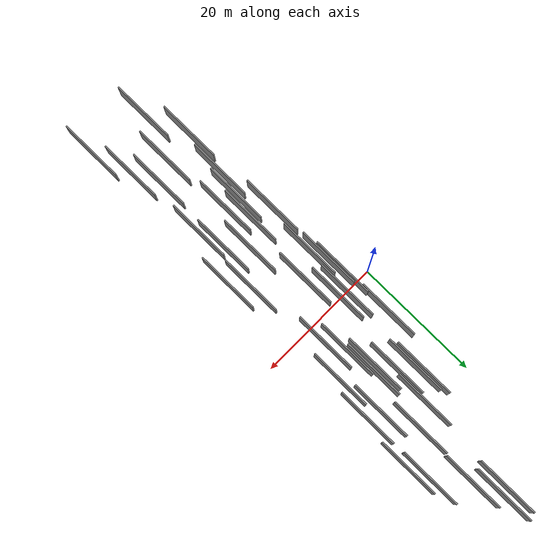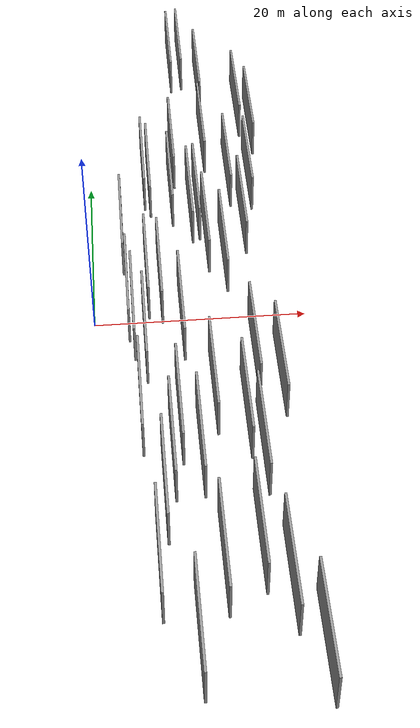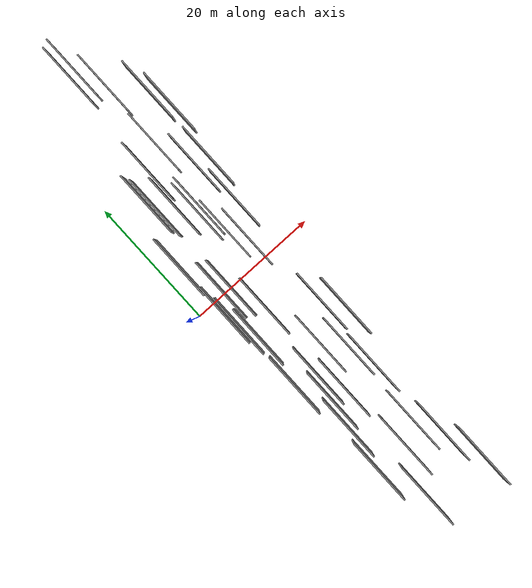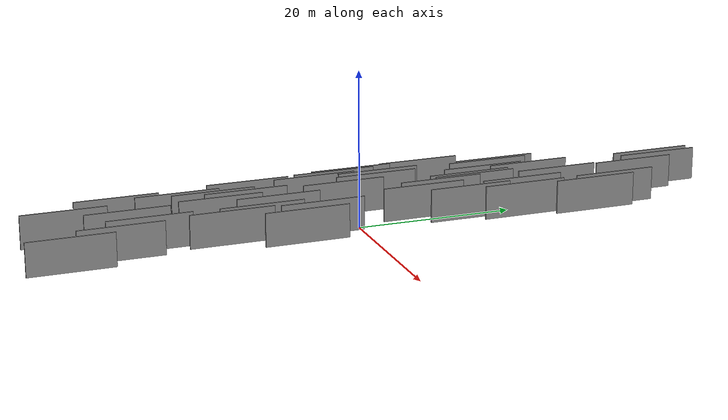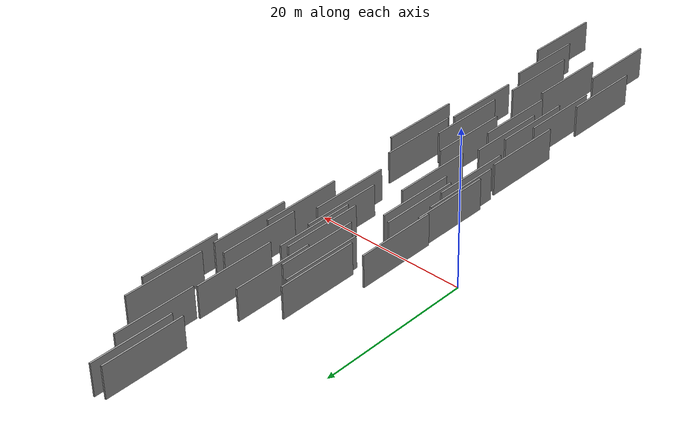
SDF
<sdf version="1.6">
 <world name="default">
  <scene>
   <sky><clouds><speed>12</speed></clouds></sky>
   <ambient>0.4 0.4 0.4 1</ambient>
   <background>0.7 0.7 0.7 1</background>
   <shadows>1</shadows>
  </scene>
  <gravity>0 0 -9.8066</gravity>
  <magnetic_field>6e-06 2.3e-05 -4.2e-05</magnetic_field>
  <physics default="0" name="default_physics" type="ode">
   <ode>
    <solver>
     <type>quick</type>
     <iters>10</iters>
     <sor>1.0</sor>
     <use_dynamic_moi_rescaling>0</use_dynamic_moi_rescaling>
    </solver>
    <constraints>
     <cfm>0</cfm>
     <erp>0.2</erp>
     <contact_max_correcting_vel>100</contact_max_correcting_vel>
     <contact_surface_layer>0.001</contact_surface_layer>
    </constraints>
   </ode>
   <max_step_size>0.004</max_step_size>
   <real_time_factor>1</real_time_factor>
   <real_time_update_rate>250</real_time_update_rate>
  </physics>
  <light name="sun" type="directional">
   <pose>0 0 10 0 0 0</pose>
   <diffuse>0.8 0.8 0.8 1</diffuse>
   <specular>0.2 0.2 0.2 1</specular>
   <attenuation>
    <range>1000</range>
    <constant>0.9</constant>
    <linear>0.01</linear>
    <quadratic>0.001</quadratic>
   </attenuation>
   <direction>-0.5 0.1 -0.9</direction>
  </light>
  <model name="grey_wall_1">
   <static>1</static>
   <pose>16.8194 23.5999 5.0 0.000000 0.000000 1.570796</pose>
   <link name="link">
    <pose>0 0 2.00 0 0 0</pose>
    <collision name="collision"><geometry><box><size>10.00 0.2 4.00</size></box></geometry></collision>
    <visual name="visual">
     <cast_shadows>0</cast_shadows>
     <geometry><box><size>10.00 0.2 4.00</size></box></geometry>
     <material>
      <script>
       <uri>model://grey_wall/materials/scripts</uri>
       <uri>model://grey_wall/materials/textures</uri>
       <name>vrc/grey_wall</name>
      </script>
     </material>
    </visual>
   </link>
  </model>
  <model name="grey_wall_2">
   <static>1</static>
   <pose>16.0667 -12.1302 5.0 0.000000 0.000000 1.570796</pose>
   <link name="link">
    <pose>0 0 2.00 0 0 0</pose>
    <collision name="collision"><geometry><box><size>10.00 0.2 4.00</size></box></geometry></collision>
    <visual name="visual">
     <cast_shadows>0</cast_shadows>
     <geometry><box><size>10.00 0.2 4.00</size></box></geometry>
     <material>
      <script>
       <uri>model://grey_wall/materials/scripts</uri>
       <uri>model://grey_wall/materials/textures</uri>
       <name>vrc/grey_wall</name>
      </script>
     </material>
    </visual>
   </link>
  </model>
  <model name="grey_wall_3">
   <static>1</static>
   <pose>5.9279 14.4292 5.0 0.000000 0.000000 1.570796</pose>
   <link name="link">
    <pose>0 0 2.00 0 0 0</pose>
    <collision name="collision"><geometry><box><size>10.00 0.2 4.00</size></box></geometry></collision>
    <visual name="visual">
     <cast_shadows>0</cast_shadows>
     <geometry><box><size>10.00 0.2 4.00</size></box></geometry>
     <material>
      <script>
       <uri>model://grey_wall/materials/scripts</uri>
       <uri>model://grey_wall/materials/textures</uri>
       <name>vrc/grey_wall</name>
      </script>
     </material>
    </visual>
   </link>
  </model>
  <model name="grey_wall_4">
   <static>1</static>
   <pose>7.9759 -4.9301 5.0 0.000000 0.000000 1.570796</pose>
   <link name="link">
    <pose>0 0 2.00 0 0 0</pose>
    <collision name="collision"><geometry><box><size>10.00 0.2 4.00</size></box></geometry></collision>
    <visual name="visual">
     <cast_shadows>0</cast_shadows>
     <geometry><box><size>10.00 0.2 4.00</size></box></geometry>
     <material>
      <script>
       <uri>model://grey_wall/materials/scripts</uri>
       <uri>model://grey_wall/materials/textures</uri>
       <name>vrc/grey_wall</name>
      </script>
     </material>
    </visual>
   </link>
  </model>
  <model name="grey_wall_5">
   <static>1</static>
   <pose>15.7229 26.6872 5.0 0.000000 0.000000 1.570796</pose>
   <link name="link">
    <pose>0 0 2.00 0 0 0</pose>
    <collision name="collision"><geometry><box><size>10.00 0.2 4.00</size></box></geometry></collision>
    <visual name="visual">
     <cast_shadows>0</cast_shadows>
     <geometry><box><size>10.00 0.2 4.00</size></box></geometry>
     <material>
      <script>
       <uri>model://grey_wall/materials/scripts</uri>
       <uri>model://grey_wall/materials/textures</uri>
       <name>vrc/grey_wall</name>
      </script>
     </material>
    </visual>
   </link>
  </model>
  <model name="grey_wall_6">
   <static>1</static>
   <pose>8.4794 18.7183 5.0 0.000000 0.000000 1.570796</pose>
   <link name="link">
    <pose>0 0 2.00 0 0 0</pose>
    <collision name="collision"><geometry><box><size>10.00 0.2 4.00</size></box></geometry></collision>
    <visual name="visual">
     <cast_shadows>0</cast_shadows>
     <geometry><box><size>10.00 0.2 4.00</size></box></geometry>
     <material>
      <script>
       <uri>model://grey_wall/materials/scripts</uri>
       <uri>model://grey_wall/materials/textures</uri>
       <name>vrc/grey_wall</name>
      </script>
     </material>
    </visual>
   </link>
  </model>
  <model name="grey_wall_7">
   <static>1</static>
   <pose>7.0692 -16.6291 5.0 0.000000 0.000000 1.570796</pose>
   <link name="link">
    <pose>0 0 2.00 0 0 0</pose>
    <collision name="collision"><geometry><box><size>10.00 0.2 4.00</size></box></geometry></collision>
    <visual name="visual">
     <cast_shadows>0</cast_shadows>
     <geometry><box><size>10.00 0.2 4.00</size></box></geometry>
     <material>
      <script>
       <uri>model://grey_wall/materials/scripts</uri>
       <uri>model://grey_wall/materials/textures</uri>
       <name>vrc/grey_wall</name>
      </script>
     </material>
    </visual>
   </link>
  </model>
  <model name="grey_wall_8">
   <static>1</static>
   <pose>7.1551 -38.0126 5.0 0.000000 0.000000 1.570796</pose>
   <link name="link">
    <pose>0 0 2.00 0 0 0</pose>
    <collision name="collision"><geometry><box><size>10.00 0.2 4.00</size></box></geometry></collision>
    <visual name="visual">
     <cast_shadows>0</cast_shadows>
     <geometry><box><size>10.00 0.2 4.00</size></box></geometry>
     <material>
      <script>
       <uri>model://grey_wall/materials/scripts</uri>
       <uri>model://grey_wall/materials/textures</uri>
       <name>vrc/grey_wall</name>
      </script>
     </material>
    </visual>
   </link>
  </model>
  <model name="grey_wall_9">
   <static>1</static>
   <pose>15.8498 14.8824 5.0 0.000000 0.000000 1.570796</pose>
   <link name="link">
    <pose>0 0 2.00 0 0 0</pose>
    <collision name="collision"><geometry><box><size>10.00 0.2 4.00</size></box></geometry></collision>
    <visual name="visual">
     <cast_shadows>0</cast_shadows>
     <geometry><box><size>10.00 0.2 4.00</size></box></geometry>
     <material>
      <script>
       <uri>model://grey_wall/materials/scripts</uri>
       <uri>model://grey_wall/materials/textures</uri>
       <name>vrc/grey_wall</name>
      </script>
     </material>
    </visual>
   </link>
  </model>
  <model name="grey_wall_10">
   <static>1</static>
   <pose>6.2799 -0.2118 5.0 0.000000 0.000000 1.570796</pose>
   <link name="link">
    <pose>0 0 2.00 0 0 0</pose>
    <collision name="collision"><geometry><box><size>10.00 0.2 4.00</size></box></geometry></collision>
    <visual name="visual">
     <cast_shadows>0</cast_shadows>
     <geometry><box><size>10.00 0.2 4.00</size></box></geometry>
     <material>
      <script>
       <uri>model://grey_wall/materials/scripts</uri>
       <uri>model://grey_wall/materials/textures</uri>
       <name>vrc/grey_wall</name>
      </script>
     </material>
    </visual>
   </link>
  </model>
  <model name="grey_wall_11">
   <static>1</static>
   <pose>14.0681 -9.5814 5.0 0.000000 0.000000 1.570796</pose>
   <link name="link">
    <pose>0 0 2.00 0 0 0</pose>
    <collision name="collision"><geometry><box><size>10.00 0.2 4.00</size></box></geometry></collision>
    <visual name="visual">
     <cast_shadows>0</cast_shadows>
     <geometry><box><size>10.00 0.2 4.00</size></box></geometry>
     <material>
      <script>
       <uri>model://grey_wall/materials/scripts</uri>
       <uri>model://grey_wall/materials/textures</uri>
       <name>vrc/grey_wall</name>
      </script>
     </material>
    </visual>
   </link>
  </model>
  <model name="grey_wall_12">
   <static>1</static>
   <pose>13.8197 15.4626 5.0 0.000000 0.000000 1.570796</pose>
   <link name="link">
    <pose>0 0 2.00 0 0 0</pose>
    <collision name="collision"><geometry><box><size>10.00 0.2 4.00</size></box></geometry></collision>
    <visual name="visual">
     <cast_shadows>0</cast_shadows>
     <geometry><box><size>10.00 0.2 4.00</size></box></geometry>
     <material>
      <script>
       <uri>model://grey_wall/materials/scripts</uri>
       <uri>model://grey_wall/materials/textures</uri>
       <name>vrc/grey_wall</name>
      </script>
     </material>
    </visual>
   </link>
  </model>
  <model name="grey_wall_13">
   <static>1</static>
   <pose>11.6754 20.9842 5.0 0.000000 0.000000 1.570796</pose>
   <link name="link">
    <pose>0 0 2.00 0 0 0</pose>
    <collision name="collision"><geometry><box><size>10.00 0.2 4.00</size></box></geometry></collision>
    <visual name="visual">
     <cast_shadows>0</cast_shadows>
     <geometry><box><size>10.00 0.2 4.00</size></box></geometry>
     <material>
      <script>
       <uri>model://grey_wall/materials/scripts</uri>
       <uri>model://grey_wall/materials/textures</uri>
       <name>vrc/grey_wall</name>
      </script>
     </material>
    </visual>
   </link>
  </model>
  <model name="grey_wall_14">
   <static>1</static>
   <pose>10.1607 -13.6476 5.0 0.000000 0.000000 1.570796</pose>
   <link name="link">
    <pose>0 0 2.00 0 0 0</pose>
    <collision name="collision"><geometry><box><size>10.00 0.2 4.00</size></box></geometry></collision>
    <visual name="visual">
     <cast_shadows>0</cast_shadows>
     <geometry><box><size>10.00 0.2 4.00</size></box></geometry>
     <material>
      <script>
       <uri>model://grey_wall/materials/scripts</uri>
       <uri>model://grey_wall/materials/textures</uri>
       <name>vrc/grey_wall</name>
      </script>
     </material>
    </visual>
   </link>
  </model>
  <model name="grey_wall_15">
   <static>1</static>
   <pose>3.0188 6.4515 5.0 0.000000 0.000000 1.570796</pose>
   <link name="link">
    <pose>0 0 2.00 0 0 0</pose>
    <collision name="collision"><geometry><box><size>10.00 0.2 4.00</size></box></geometry></collision>
    <visual name="visual">
     <cast_shadows>0</cast_shadows>
     <geometry><box><size>10.00 0.2 4.00</size></box></geometry>
     <material>
      <script>
       <uri>model://grey_wall/materials/scripts</uri>
       <uri>model://grey_wall/materials/textures</uri>
       <name>vrc/grey_wall</name>
      </script>
     </material>
    </visual>
   </link>
  </model>
  <model name="grey_wall_16">
   <static>1</static>
   <pose>5.4057 -24.4074 5.0 0.000000 0.000000 1.570796</pose>
   <link name="link">
    <pose>0 0 2.00 0 0 0</pose>
    <collision name="collision"><geometry><box><size>10.00 0.2 4.00</size></box></geometry></collision>
    <visual name="visual">
     <cast_shadows>0</cast_shadows>
     <geometry><box><size>10.00 0.2 4.00</size></box></geometry>
     <material>
      <script>
       <uri>model://grey_wall/materials/scripts</uri>
       <uri>model://grey_wall/materials/textures</uri>
       <name>vrc/grey_wall</name>
      </script>
     </material>
    </visual>
   </link>
  </model>
  <model name="grey_wall_17">
   <static>1</static>
   <pose>5.1045 0.4336 5.0 0.000000 0.000000 1.570796</pose>
   <link name="link">
    <pose>0 0 2.00 0 0 0</pose>
    <collision name="collision"><geometry><box><size>10.00 0.2 4.00</size></box></geometry></collision>
    <visual name="visual">
     <cast_shadows>0</cast_shadows>
     <geometry><box><size>10.00 0.2 4.00</size></box></geometry>
     <material>
      <script>
       <uri>model://grey_wall/materials/scripts</uri>
       <uri>model://grey_wall/materials/textures</uri>
       <name>vrc/grey_wall</name>
      </script>
     </material>
    </visual>
   </link>
  </model>
  <model name="grey_wall_18">
   <static>1</static>
   <pose>3.2434 -2.3034 5.0 0.000000 0.000000 1.570796</pose>
   <link name="link">
    <pose>0 0 2.00 0 0 0</pose>
    <collision name="collision"><geometry><box><size>10.00 0.2 4.00</size></box></geometry></collision>
    <visual name="visual">
     <cast_shadows>0</cast_shadows>
     <geometry><box><size>10.00 0.2 4.00</size></box></geometry>
     <material>
      <script>
       <uri>model://grey_wall/materials/scripts</uri>
       <uri>model://grey_wall/materials/textures</uri>
       <name>vrc/grey_wall</name>
      </script>
     </material>
    </visual>
   </link>
  </model>
  <model name="grey_wall_19">
   <static>1</static>
   <pose>3.6451 -4.6188 5.0 0.000000 0.000000 1.570796</pose>
   <link name="link">
    <pose>0 0 2.00 0 0 0</pose>
    <collision name="collision"><geometry><box><size>10.00 0.2 4.00</size></box></geometry></collision>
    <visual name="visual">
     <cast_shadows>0</cast_shadows>
     <geometry><box><size>10.00 0.2 4.00</size></box></geometry>
     <material>
      <script>
       <uri>model://grey_wall/materials/scripts</uri>
       <uri>model://grey_wall/materials/textures</uri>
       <name>vrc/grey_wall</name>
      </script>
     </material>
    </visual>
   </link>
  </model>
  <model name="grey_wall_20">
   <static>1</static>
   <pose>14.4565 -33.1726 5.0 0.000000 0.000000 1.570796</pose>
   <link name="link">
    <pose>0 0 2.00 0 0 0</pose>
    <collision name="collision"><geometry><box><size>10.00 0.2 4.00</size></box></geometry></collision>
    <visual name="visual">
     <cast_shadows>0</cast_shadows>
     <geometry><box><size>10.00 0.2 4.00</size></box></geometry>
     <material>
      <script>
       <uri>model://grey_wall/materials/scripts</uri>
       <uri>model://grey_wall/materials/textures</uri>
       <name>vrc/grey_wall</name>
      </script>
     </material>
    </visual>
   </link>
  </model>
  <model name="grey_wall_21">
   <static>1</static>
   <pose>6.2597 -20.3163 5.0 0.000000 0.000000 1.570796</pose>
   <link name="link">
    <pose>0 0 2.00 0 0 0</pose>
    <collision name="collision"><geometry><box><size>10.00 0.2 4.00</size></box></geometry></collision>
    <visual name="visual">
     <cast_shadows>0</cast_shadows>
     <geometry><box><size>10.00 0.2 4.00</size></box></geometry>
     <material>
      <script>
       <uri>model://grey_wall/materials/scripts</uri>
       <uri>model://grey_wall/materials/textures</uri>
       <name>vrc/grey_wall</name>
      </script>
     </material>
    </visual>
   </link>
  </model>
  <model name="grey_wall_22">
   <static>1</static>
   <pose>4.5994 -7.4228 5.0 0.000000 0.000000 1.570796</pose>
   <link name="link">
    <pose>0 0 2.00 0 0 0</pose>
    <collision name="collision"><geometry><box><size>10.00 0.2 4.00</size></box></geometry></collision>
    <visual name="visual">
     <cast_shadows>0</cast_shadows>
     <geometry><box><size>10.00 0.2 4.00</size></box></geometry>
     <material>
      <script>
       <uri>model://grey_wall/materials/scripts</uri>
       <uri>model://grey_wall/materials/textures</uri>
       <name>vrc/grey_wall</name>
      </script>
     </material>
    </visual>
   </link>
  </model>
  <model name="grey_wall_23">
   <static>1</static>
   <pose>12.4630 3.4419 5.0 0.000000 0.000000 1.570796</pose>
   <link name="link">
    <pose>0 0 2.00 0 0 0</pose>
    <collision name="collision"><geometry><box><size>10.00 0.2 4.00</size></box></geometry></collision>
    <visual name="visual">
     <cast_shadows>0</cast_shadows>
     <geometry><box><size>10.00 0.2 4.00</size></box></geometry>
     <material>
      <script>
       <uri>model://grey_wall/materials/scripts</uri>
       <uri>model://grey_wall/materials/textures</uri>
       <name>vrc/grey_wall</name>
      </script>
     </material>
    </visual>
   </link>
  </model>
  <model name="grey_wall_24">
   <static>1</static>
   <pose>7.9998 12.9274 5.0 0.000000 0.000000 1.570796</pose>
   <link name="link">
    <pose>0 0 2.00 0 0 0</pose>
    <collision name="collision"><geometry><box><size>10.00 0.2 4.00</size></box></geometry></collision>
    <visual name="visual">
     <cast_shadows>0</cast_shadows>
     <geometry><box><size>10.00 0.2 4.00</size></box></geometry>
     <material>
      <script>
       <uri>model://grey_wall/materials/scripts</uri>
       <uri>model://grey_wall/materials/textures</uri>
       <name>vrc/grey_wall</name>
      </script>
     </material>
    </visual>
   </link>
  </model>
  <model name="grey_wall_25">
   <static>1</static>
   <pose>12.5018 -29.4752 5.0 0.000000 0.000000 1.570796</pose>
   <link name="link">
    <pose>0 0 2.00 0 0 0</pose>
    <collision name="collision"><geometry><box><size>10.00 0.2 4.00</size></box></geometry></collision>
    <visual name="visual">
     <cast_shadows>0</cast_shadows>
     <geometry><box><size>10.00 0.2 4.00</size></box></geometry>
     <material>
      <script>
       <uri>model://grey_wall/materials/scripts</uri>
       <uri>model://grey_wall/materials/textures</uri>
       <name>vrc/grey_wall</name>
      </script>
     </material>
    </visual>
   </link>
  </model>
  <model name="grey_wall_26">
   <static>1</static>
   <pose>9.1547 34.9756 5.0 0.000000 0.000000 1.570796</pose>
   <link name="link">
    <pose>0 0 2.00 0 0 0</pose>
    <collision name="collision"><geometry><box><size>10.00 0.2 4.00</size></box></geometry></collision>
    <visual name="visual">
     <cast_shadows>0</cast_shadows>
     <geometry><box><size>10.00 0.2 4.00</size></box></geometry>
     <material>
      <script>
       <uri>model://grey_wall/materials/scripts</uri>
       <uri>model://grey_wall/materials/textures</uri>
       <name>vrc/grey_wall</name>
      </script>
     </material>
    </visual>
   </link>
  </model>
  <model name="grey_wall_27">
   <static>1</static>
   <pose>10.9831 6.2111 5.0 0.000000 0.000000 1.570796</pose>
   <link name="link">
    <pose>0 0 2.00 0 0 0</pose>
    <collision name="collision"><geometry><box><size>10.00 0.2 4.00</size></box></geometry></collision>
    <visual name="visual">
     <cast_shadows>0</cast_shadows>
     <geometry><box><size>10.00 0.2 4.00</size></box></geometry>
     <material>
      <script>
       <uri>model://grey_wall/materials/scripts</uri>
       <uri>model://grey_wall/materials/textures</uri>
       <name>vrc/grey_wall</name>
      </script>
     </material>
    </visual>
   </link>
  </model>
  <model name="grey_wall_28">
   <static>1</static>
   <pose>13.7044 -20.2439 5.0 0.000000 0.000000 1.570796</pose>
   <link name="link">
    <pose>0 0 2.00 0 0 0</pose>
    <collision name="collision"><geometry><box><size>10.00 0.2 4.00</size></box></geometry></collision>
    <visual name="visual">
     <cast_shadows>0</cast_shadows>
     <geometry><box><size>10.00 0.2 4.00</size></box></geometry>
     <material>
      <script>
       <uri>model://grey_wall/materials/scripts</uri>
       <uri>model://grey_wall/materials/textures</uri>
       <name>vrc/grey_wall</name>
      </script>
     </material>
    </visual>
   </link>
  </model>
  <model name="grey_wall_29">
   <static>1</static>
   <pose>12.7140 -16.4110 5.0 0.000000 0.000000 1.570796</pose>
   <link name="link">
    <pose>0 0 2.00 0 0 0</pose>
    <collision name="collision"><geometry><box><size>10.00 0.2 4.00</size></box></geometry></collision>
    <visual name="visual">
     <cast_shadows>0</cast_shadows>
     <geometry><box><size>10.00 0.2 4.00</size></box></geometry>
     <material>
      <script>
       <uri>model://grey_wall/materials/scripts</uri>
       <uri>model://grey_wall/materials/textures</uri>
       <name>vrc/grey_wall</name>
      </script>
     </material>
    </visual>
   </link>
  </model>
  <model name="grey_wall_30">
   <static>1</static>
   <pose>8.5845 -20.0893 5.0 0.000000 0.000000 1.570796</pose>
   <link name="link">
    <pose>0 0 2.00 0 0 0</pose>
    <collision name="collision"><geometry><box><size>10.00 0.2 4.00</size></box></geometry></collision>
    <visual name="visual">
     <cast_shadows>0</cast_shadows>
     <geometry><box><size>10.00 0.2 4.00</size></box></geometry>
     <material>
      <script>
       <uri>model://grey_wall/materials/scripts</uri>
       <uri>model://grey_wall/materials/textures</uri>
       <name>vrc/grey_wall</name>
      </script>
     </material>
    </visual>
   </link>
  </model>
  <model name="grey_wall_31">
   <static>1</static>
   <pose>10.4450 10.7871 5.0 0.000000 0.000000 1.570796</pose>
   <link name="link">
    <pose>0 0 2.00 0 0 0</pose>
    <collision name="collision"><geometry><box><size>10.00 0.2 4.00</size></box></geometry></collision>
    <visual name="visual">
     <cast_shadows>0</cast_shadows>
     <geometry><box><size>10.00 0.2 4.00</size></box></geometry>
     <material>
      <script>
       <uri>model://grey_wall/materials/scripts</uri>
       <uri>model://grey_wall/materials/textures</uri>
       <name>vrc/grey_wall</name>
      </script>
     </material>
    </visual>
   </link>
  </model>
  <model name="grey_wall_32">
   <static>1</static>
   <pose>5.4219 15.5507 5.0 0.000000 0.000000 1.570796</pose>
   <link name="link">
    <pose>0 0 2.00 0 0 0</pose>
    <collision name="collision"><geometry><box><size>10.00 0.2 4.00</size></box></geometry></collision>
    <visual name="visual">
     <cast_shadows>0</cast_shadows>
     <geometry><box><size>10.00 0.2 4.00</size></box></geometry>
     <material>
      <script>
       <uri>model://grey_wall/materials/scripts</uri>
       <uri>model://grey_wall/materials/textures</uri>
       <name>vrc/grey_wall</name>
      </script>
     </material>
    </visual>
   </link>
  </model>
  <model name="grey_wall_33">
   <static>1</static>
   <pose>11.9430 31.1743 5.0 0.000000 0.000000 1.570796</pose>
   <link name="link">
    <pose>0 0 2.00 0 0 0</pose>
    <collision name="collision"><geometry><box><size>10.00 0.2 4.00</size></box></geometry></collision>
    <visual name="visual">
     <cast_shadows>0</cast_shadows>
     <geometry><box><size>10.00 0.2 4.00</size></box></geometry>
     <material>
      <script>
       <uri>model://grey_wall/materials/scripts</uri>
       <uri>model://grey_wall/materials/textures</uri>
       <name>vrc/grey_wall</name>
      </script>
     </material>
    </visual>
   </link>
  </model>
  <model name="grey_wall_34">
   <static>1</static>
   <pose>9.7612 10.3854 5.0 0.000000 0.000000 1.570796</pose>
   <link name="link">
    <pose>0 0 2.00 0 0 0</pose>
    <collision name="collision"><geometry><box><size>10.00 0.2 4.00</size></box></geometry></collision>
    <visual name="visual">
     <cast_shadows>0</cast_shadows>
     <geometry><box><size>10.00 0.2 4.00</size></box></geometry>
     <material>
      <script>
       <uri>model://grey_wall/materials/scripts</uri>
       <uri>model://grey_wall/materials/textures</uri>
       <name>vrc/grey_wall</name>
      </script>
     </material>
    </visual>
   </link>
  </model>
  <model name="grey_wall_35">
   <static>1</static>
   <pose>9.5102 -31.2662 5.0 0.000000 0.000000 1.570796</pose>
   <link name="link">
    <pose>0 0 2.00 0 0 0</pose>
    <collision name="collision"><geometry><box><size>10.00 0.2 4.00</size></box></geometry></collision>
    <visual name="visual">
     <cast_shadows>0</cast_shadows>
     <geometry><box><size>10.00 0.2 4.00</size></box></geometry>
     <material>
      <script>
       <uri>model://grey_wall/materials/scripts</uri>
       <uri>model://grey_wall/materials/textures</uri>
       <name>vrc/grey_wall</name>
      </script>
     </material>
    </visual>
   </link>
  </model>
  <model name="grey_wall_36">
   <static>1</static>
   <pose>4.5836 -31.3686 5.0 0.000000 0.000000 1.570796</pose>
   <link name="link">
    <pose>0 0 2.00 0 0 0</pose>
    <collision name="collision"><geometry><box><size>10.00 0.2 4.00</size></box></geometry></collision>
    <visual name="visual">
     <cast_shadows>0</cast_shadows>
     <geometry><box><size>10.00 0.2 4.00</size></box></geometry>
     <material>
      <script>
       <uri>model://grey_wall/materials/scripts</uri>
       <uri>model://grey_wall/materials/textures</uri>
       <name>vrc/grey_wall</name>
      </script>
     </material>
    </visual>
   </link>
  </model>
  <model name="grey_wall_37">
   <static>1</static>
   <pose>3.8803 -15.4449 5.0 0.000000 0.000000 1.570796</pose>
   <link name="link">
    <pose>0 0 2.00 0 0 0</pose>
    <collision name="collision"><geometry><box><size>10.00 0.2 4.00</size></box></geometry></collision>
    <visual name="visual">
     <cast_shadows>0</cast_shadows>
     <geometry><box><size>10.00 0.2 4.00</size></box></geometry>
     <material>
      <script>
       <uri>model://grey_wall/materials/scripts</uri>
       <uri>model://grey_wall/materials/textures</uri>
       <name>vrc/grey_wall</name>
      </script>
     </material>
    </visual>
   </link>
  </model>
  <model name="grey_wall_38">
   <static>1</static>
   <pose>16.2967 -39.1708 5.0 0.000000 0.000000 1.570796</pose>
   <link name="link">
    <pose>0 0 2.00 0 0 0</pose>
    <collision name="collision"><geometry><box><size>10.00 0.2 4.00</size></box></geometry></collision>
    <visual name="visual">
     <cast_shadows>0</cast_shadows>
     <geometry><box><size>10.00 0.2 4.00</size></box></geometry>
     <material>
      <script>
       <uri>model://grey_wall/materials/scripts</uri>
       <uri>model://grey_wall/materials/textures</uri>
       <name>vrc/grey_wall</name>
      </script>
     </material>
    </visual>
   </link>
  </model>
  <model name="grey_wall_39">
   <static>1</static>
   <pose>14.6735 8.4688 5.0 0.000000 0.000000 1.570796</pose>
   <link name="link">
    <pose>0 0 2.00 0 0 0</pose>
    <collision name="collision"><geometry><box><size>10.00 0.2 4.00</size></box></geometry></collision>
    <visual name="visual">
     <cast_shadows>0</cast_shadows>
     <geometry><box><size>10.00 0.2 4.00</size></box></geometry>
     <material>
      <script>
       <uri>model://grey_wall/materials/scripts</uri>
       <uri>model://grey_wall/materials/textures</uri>
       <name>vrc/grey_wall</name>
      </script>
     </material>
    </visual>
   </link>
  </model>
  <model name="grey_wall_40">
   <static>1</static>
   <pose>10.2508 35.4286 5.0 0.000000 0.000000 1.570796</pose>
   <link name="link">
    <pose>0 0 2.00 0 0 0</pose>
    <collision name="collision"><geometry><box><size>10.00 0.2 4.00</size></box></geometry></collision>
    <visual name="visual">
     <cast_shadows>0</cast_shadows>
     <geometry><box><size>10.00 0.2 4.00</size></box></geometry>
     <material>
      <script>
       <uri>model://grey_wall/materials/scripts</uri>
       <uri>model://grey_wall/materials/textures</uri>
       <name>vrc/grey_wall</name>
      </script>
     </material>
    </visual>
   </link>
  </model>
 </world>
</sdf>
